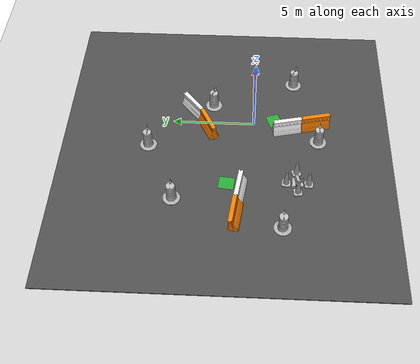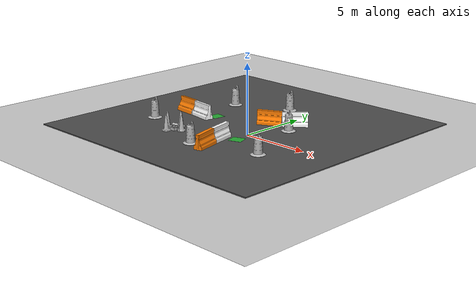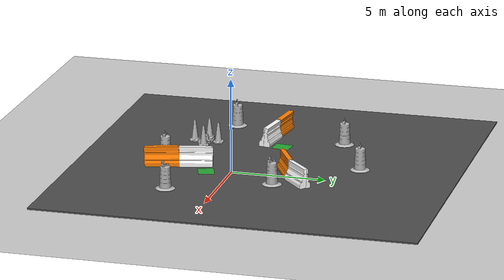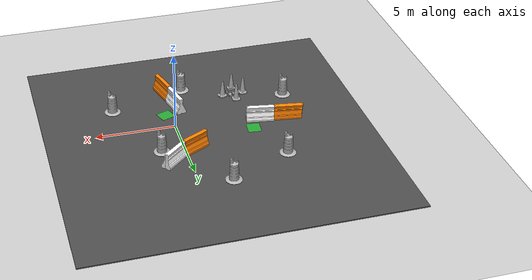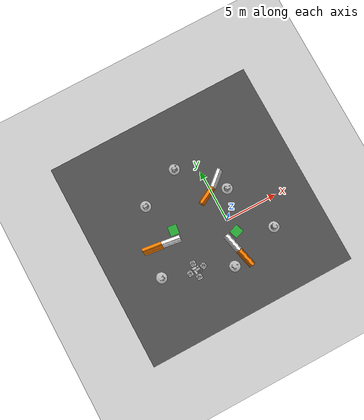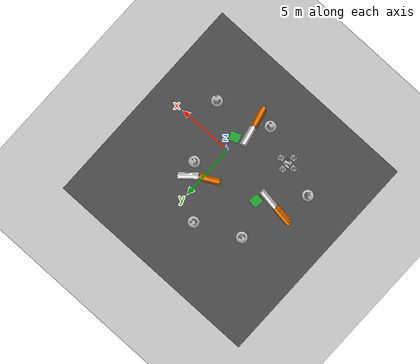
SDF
<sdf version="1.6">
 <world name="default">
  <scene><ambient>0.4 0.4 0.4 1</ambient><background>0.7 0.7 0.7 1</background><shadows>1</shadows></scene>
  <model name="ground_plane">
   <static>1</static>
   <link name="link">
    <collision name="collision">
     <geometry><plane><normal>0 0 1</normal><size>100 100</size></plane></geometry>
     <surface><friction><ode><mu>100</mu><mu2>50</mu2></ode></friction></surface>
    </collision>
    <visual name="visual">
     <cast_shadows>0</cast_shadows>
     <geometry><plane><normal>0 0 1</normal><size>100 100</size></plane></geometry>
     <material>
      <script><uri>file://media/materials/scripts/gazebo.material</uri><name>Gazebo/Grey</name></script>
     </material>
    </visual>
   </link>
  </model>
  <physics name="default_physics" default="0" type="ode">
   <real_time_update_rate>1000</real_time_update_rate>
   <max_step_size>0.001</max_step_size>
   <real_time_factor>1</real_time_factor>
   <ode>
    <solver>
     <type>quick</type>
     <iters>150</iters>
     <precon_iters>0</precon_iters>
     <sor>1.4</sor>
     <use_dynamic_moi_rescaling>1</use_dynamic_moi_rescaling>
    </solver>
    <constraints>
     <cfm>1e-05</cfm>
     <erp>0.2</erp>
     <contact_max_correcting_vel>2000</contact_max_correcting_vel>
     <contact_surface_layer>0.01</contact_surface_layer>
    </constraints>
   </ode>
  </physics>
  <gravity>0 0 -9.8</gravity>
  <magnetic_field>6e-06 2.3e-05 -4.2e-05</magnetic_field>
  <atmosphere type="adiabatic"/>
  <audio><device>default</device></audio>
  <spherical_coordinates>
   <surface_model>EARTH_WGS84</surface_model>
   <latitude_deg>0</latitude_deg>
   <longitude_deg>0</longitude_deg>
   <elevation>0</elevation>
   <heading_deg>0</heading_deg>
  </spherical_coordinates>
  <model name="asphalt_plane">
   <static>1</static>
   <link name="link">
    <collision name="collision"><geometry><box><size>20 20 0.1</size></box></geometry></collision>
    <visual name="visual">
     <cast_shadows>0</cast_shadows>
     <geometry><box><size>20 20 0.1</size></box></geometry>
     <material>
      <script>
       <uri>model://asphalt_plane/materials/scripts</uri>
       <uri>model://asphalt_plane/materials/textures</uri>
       <name>vrc/asphalt</name>
      </script>
     </material>
    </visual>
   </link>
   <pose>-1.8669 1.65725 0 0 -0 0.001027</pose>
  </model>
  <model name="Construction Cone">
   <link name="link">
    <collision name="collision">
     <geometry>
      <mesh><scale>10 10 10</scale><uri>model://construction_cone/meshes/construction_cone.dae</uri></mesh>
     </geometry>
    </collision>
    <visual name="visual">
     <geometry>
      <mesh><scale>10 10 10</scale><uri>model://construction_cone/meshes/construction_cone.dae</uri></mesh>
     </geometry>
    </visual>
    <inertial>
     <inertia><ixx>1</ixx><ixy>0</ixy><ixz>0</ixz><iyy>1</iyy><iyz>0</iyz><izz>1</izz></inertia>
     <mass>1</mass>
    </inertial>
   </link>
   <pose>-5.16435 -2.65176 0.05 0 1e-06 0.121631</pose>
  </model>
  <model name="Construction Cone_0">
   <link name="link">
    <collision name="collision">
     <geometry>
      <mesh><scale>10 10 10</scale><uri>model://construction_cone/meshes/construction_cone.dae</uri></mesh>
     </geometry>
    </collision>
    <visual name="visual">
     <geometry>
      <mesh><scale>10 10 10</scale><uri>model://construction_cone/meshes/construction_cone.dae</uri></mesh>
     </geometry>
    </visual>
    <inertial>
     <inertia><ixx>1</ixx><ixy>0</ixy><ixz>0</ixz><iyy>1</iyy><iyz>0</iyz><izz>1</izz></inertia>
     <mass>1</mass>
    </inertial>
   </link>
   <pose>-4.57552 -3.29033 0.05 -0 1e-06 0.01997</pose>
  </model>
  <model name="Construction Cone_1">
   <link name="link">
    <collision name="collision">
     <geometry>
      <mesh><scale>10 10 10</scale><uri>model://construction_cone/meshes/construction_cone.dae</uri></mesh>
     </geometry>
    </collision>
    <visual name="visual">
     <geometry>
      <mesh><scale>10 10 10</scale><uri>model://construction_cone/meshes/construction_cone.dae</uri></mesh>
     </geometry>
    </visual>
    <inertial>
     <inertia><ixx>1</ixx><ixy>0</ixy><ixz>0</ixz><iyy>1</iyy><iyz>0</iyz><izz>1</izz></inertia>
     <mass>1</mass>
    </inertial>
   </link>
   <pose>-3.78942 -2.58653 0.05 0 1e-06 0.408873</pose>
  </model>
  <model name="Construction Cone_2">
   <link name="link">
    <collision name="collision">
     <geometry>
      <mesh><scale>10 10 10</scale><uri>model://construction_cone/meshes/construction_cone.dae</uri></mesh>
     </geometry>
    </collision>
    <visual name="visual">
     <geometry>
      <mesh><scale>10 10 10</scale><uri>model://construction_cone/meshes/construction_cone.dae</uri></mesh>
     </geometry>
    </visual>
    <inertial>
     <inertia><ixx>1</ixx><ixy>0</ixy><ixz>0</ixz><iyy>1</iyy><iyz>0</iyz><izz>1</izz></inertia>
     <mass>1</mass>
    </inertial>
   </link>
   <pose>-4.53453 -1.98048 0.05 -0 1e-06 -0.051788</pose>
  </model>
  <model name="Construction Barrel">
   <link name="link">
    <inertial>
     <pose>0 0 0.4 0 -0 0</pose>
     <mass>500</mass>
     <inertia><ixx>51.2096</ixx><iyy>51.2096</iyy><izz>25</izz><ixy>0</ixy><ixz>0</ixz><iyz>0</iyz></inertia>
    </inertial>
    <collision name="collision">
     <geometry><mesh><uri>model://construction_barrel/meshes/construction_barrel.dae</uri></mesh></geometry>
    </collision>
    <visual name="visual">
     <geometry><mesh><uri>model://construction_barrel/meshes/construction_barrel.dae</uri></mesh></geometry>
    </visual>
   </link>
   <pose>-5.84227 4.60122 0.049999 -1e-06 -4e-06 -0.000234</pose>
  </model>
  <model name="drc_practice_organge_jersey_barrier">
   <static>1</static>
   <link name="link">
    <visual name="visual">
     <geometry>
      <mesh><uri>model://drc_practice_orange_jersey_barrier/meshes/jersey_barrier.dae</uri></mesh>
     </geometry>
    </visual>
    <collision name="collision">
     <geometry>
      <mesh><uri>model://drc_practice_orange_jersey_barrier/meshes/jersey_barrier.dae</uri></mesh>
     </geometry>
    </collision>
   </link>
   <pose>-7.02886 0.860872 0 0.018325 -0.182031 -1.69578</pose>
  </model>
  <model name="drc_practice_white_jersey_barrier">
   <static>1</static>
   <link name="link">
    <visual name="visual">
     <geometry>
      <mesh><uri>model://drc_practice_white_jersey_barrier/meshes/jersey_barrier.dae</uri></mesh>
     </geometry>
    </visual>
    <collision name="collision">
     <geometry>
      <mesh><uri>model://drc_practice_white_jersey_barrier/meshes/jersey_barrier.dae</uri></mesh>
     </geometry>
    </collision>
   </link>
   <pose>-5.27675 0.692724 0 0.015873 -0.089228 -1.71295</pose>
  </model>
  <model name="Construction Barrel_clone">
   <link name="link">
    <inertial>
     <pose>0 0 0.4 0 -0 0</pose>
     <mass>500</mass>
     <inertia><ixx>51.2096</ixx><iyy>51.2096</iyy><izz>25</izz><ixy>0</ixy><ixz>0</ixz><iyz>0</iyz></inertia>
    </inertial>
    <collision name="collision">
     <geometry><mesh><uri>model://construction_barrel/meshes/construction_barrel.dae</uri></mesh></geometry>
    </collision>
    <visual name="visual">
     <geometry><mesh><uri>model://construction_barrel/meshes/construction_barrel.dae</uri></mesh></geometry>
    </visual>
   </link>
   <pose>-7.59534 -1.76176 0.05 2e-06 0 -8e-06</pose>
  </model>
  <model name="Construction Barrel_clone_clone">
   <link name="link">
    <inertial>
     <pose>0 0 0.4 0 -0 0</pose>
     <mass>500</mass>
     <inertia><ixx>51.2096</ixx><iyy>51.2096</iyy><izz>25</izz><ixy>0</ixy><ixz>0</ixz><iyz>0</iyz></inertia>
    </inertial>
    <collision name="collision">
     <geometry><mesh><uri>model://construction_barrel/meshes/construction_barrel.dae</uri></mesh></geometry>
    </collision>
    <visual name="visual">
     <geometry><mesh><uri>model://construction_barrel/meshes/construction_barrel.dae</uri></mesh></geometry>
    </visual>
   </link>
   <pose>1.42647 2.55656 0.049999 -1e-06 -2e-06 -0.448103</pose>
  </model>
  <model name="unit_box">
   <pose>0.292327 -1.27788 0.051182 0 -0 0.35052</pose>
   <link name="link">
    <inertial>
     <mass>1</mass>
     <inertia>
      <ixx>0.166667</ixx>
      <ixy>0</ixy>
      <ixz>0</ixz>
      <iyy>0.166667</iyy>
      <iyz>0</iyz>
      <izz>0.166667</izz>
     </inertia>
    </inertial>
    <visual name="visual">
     <geometry><box><size>0.925399 0.835488 0.005028</size></box></geometry>
     <material>
      <script><name>Gazebo/Green</name><uri>file://media/materials/scripts/gazebo.material</uri></script>
     </material>
    </visual>
   </link>
   <static>1</static>
  </model>
  <model name="unit_box_clone">
   <pose>-4.65698 1.50654 0.048636 0 -0 1.46411</pose>
   <link name="link">
    <inertial>
     <mass>1</mass>
     <inertia>
      <ixx>0.166667</ixx>
      <ixy>0</ixy>
      <ixz>0</ixz>
      <iyy>0.166667</iyy>
      <iyz>0</iyz>
      <izz>0.166667</izz>
     </inertia>
    </inertial>
    <visual name="visual">
     <geometry><box><size>0.925399 0.835488 0.005</size></box></geometry>
     <material>
      <script><name>Gazebo/Green</name><uri>file://media/materials/scripts/gazebo.material</uri></script>
     </material>
    </visual>
   </link>
   <static>1</static>
  </model>
  <light name="user_directional_light_0" type="directional">
   <pose>-1.00914 -0.301724 1 0 -0 0</pose>
   <diffuse>0.5 0.5 0.5 1</diffuse>
   <specular>0.1 0.1 0.1 1</specular>
   <direction>0.1 0.1 -0.9</direction>
   <attenuation>
    <range>20</range>
    <constant>0.5</constant>
    <linear>0.01</linear>
    <quadratic>0.001</quadratic>
   </attenuation>
  </light>
  <model name="drc_practice_white_jersey_barrier_clone">
   <static>1</static>
   <link name="link">
    <visual name="visual">
     <geometry>
      <mesh><uri>model://drc_practice_white_jersey_barrier/meshes/jersey_barrier.dae</uri></mesh>
     </geometry>
    </visual>
    <collision name="collision">
     <geometry>
      <mesh><uri>model://drc_practice_white_jersey_barrier/meshes/jersey_barrier.dae</uri></mesh>
     </geometry>
    </collision>
   </link>
   <pose>0.962383 3.76872 0 0.015269 -0.070039 -0.847827</pose>
  </model>
  <model name="drc_practice_organge_jersey_barrier_clone">
   <static>1</static>
   <link name="link">
    <visual name="visual">
     <geometry>
      <mesh><uri>model://drc_practice_orange_jersey_barrier/meshes/jersey_barrier.dae</uri></mesh>
     </geometry>
    </visual>
    <collision name="collision">
     <geometry>
      <mesh><uri>model://drc_practice_orange_jersey_barrier/meshes/jersey_barrier.dae</uri></mesh>
     </geometry>
    </collision>
   </link>
   <pose>-0.55174 2.79674 -0.018207 0.001919 -0.010685 -1.0826</pose>
  </model>
  <model name="cinder_block">
   <link name="link">
    <inertial>
     <pose>0 0 0.1016 0 -0 0</pose>
     <mass>5</mass>
     <inertia>
      <ixx>0.028705</ixx>
      <ixy>0</ixy>
      <iyy>0.073708</iyy>
      <ixz>0</ixz>
      <iyz>0</iyz>
      <izz>0.06908</izz>
     </inertia>
    </inertial>
    <visual name="visual">
     <geometry><mesh><uri>model://cinder_block/meshes/cinder_block.dae</uri></mesh></geometry>
    </visual>
    <collision name="left">
     <pose>0 -0.08465 0.1016 0 -0 0</pose>
     <geometry><box><size>0.43495 0.0339 0.2032</size></box></geometry>
     <surface>
      <contact><ode><max_vel>0.1</max_vel><min_depth>0.001</min_depth></ode></contact>
      <friction><ode><mu>1</mu><mu2>1</mu2></ode></friction>
     </surface>
    </collision>
    <collision name="right">
     <pose>0 0.08465 0.1016 0 -0 0</pose>
     <geometry><box><size>0.43495 0.0339 0.2032</size></box></geometry>
     <surface>
      <contact><ode><max_vel>0.1</max_vel><min_depth>0.001</min_depth></ode></contact>
      <friction><ode><mu>1</mu><mu2>1</mu2></ode></friction>
     </surface>
    </collision>
    <collision name="front">
     <pose>0.18625 0 0.1016 0 -0 0</pose>
     <geometry><box><size>0.0339 0.1354 0.203</size></box></geometry>
     <surface>
      <contact><ode><max_vel>0.1</max_vel><min_depth>0.001</min_depth></ode></contact>
      <friction><ode><mu>1</mu><mu2>1</mu2></ode></friction>
     </surface>
    </collision>
    <collision name="middle">
     <pose>0 0 0.1016 0 -0 0</pose>
     <geometry><box><size>0.0339 0.1354 0.203</size></box></geometry>
     <surface>
      <contact><ode><max_vel>0.1</max_vel><min_depth>0.001</min_depth></ode></contact>
      <friction><ode><mu>1</mu><mu2>1</mu2></ode></friction>
     </surface>
    </collision>
    <collision name="back">
     <pose>-0.18625 0 0.1016 0 -0 0</pose>
     <geometry><box><size>0.0339 0.1354 0.203</size></box></geometry>
     <surface>
      <contact><ode><max_vel>0.1</max_vel><min_depth>0.001</min_depth></ode></contact>
      <friction><ode><mu>1</mu><mu2>1</mu2></ode></friction>
     </surface>
    </collision>
   </link>
   <pose>-4.31907 -2.88792 0.049996 -3.5e-05 -0 0.042391</pose>
  </model>
  <model name="cinder_block_2">
   <link name="link">
    <inertial>
     <pose>0 0 0.071438 0 -0 0</pose>
     <mass>5</mass>
     <inertia>
      <ixx>0.06908</ixx>
      <ixy>0</ixy>
      <iyy>0.028705</iyy>
      <ixz>0</ixz>
      <iyz>0</iyz>
      <izz>0.073708</izz>
     </inertia>
    </inertial>
    <visual name="visual">
     <geometry><mesh><uri>model://cinder_block_2/meshes/cinder_block.dae</uri></mesh></geometry>
    </visual>
    <collision name="top">
     <pose>0 0 0.130175 0 -0 0</pose>
     <geometry><box><size>0.19368 0.396875 0.0254</size></box></geometry>
     <surface>
      <contact><ode><max_vel>0.1</max_vel><min_depth>0.001</min_depth></ode></contact>
      <friction><ode><mu>1</mu><mu2>1</mu2></ode></friction>
     </surface>
    </collision>
    <collision name="bottom">
     <pose>0 0 0.0127 0 -0 0</pose>
     <geometry><box><size>0.19368 0.396875 0.0254</size></box></geometry>
     <surface>
      <contact><ode><max_vel>0.1</max_vel><min_depth>0.001</min_depth></ode></contact>
      <friction><ode><mu>1</mu><mu2>1</mu2></ode></friction>
     </surface>
    </collision>
    <collision name="left">
     <pose>0 -0.185738 0.071438 0 -0 0</pose>
     <geometry><box><size>0.19368 0.0254 0.092075</size></box></geometry>
     <surface>
      <contact><ode><max_vel>0.1</max_vel><min_depth>0.001</min_depth></ode></contact>
      <friction><ode><mu>1</mu><mu2>1</mu2></ode></friction>
     </surface>
    </collision>
    <collision name="right">
     <pose>0 0.185738 0.071438 0 -0 0</pose>
     <geometry><box><size>0.19368 0.0254 0.092075</size></box></geometry>
     <surface>
      <contact><ode><max_vel>0.1</max_vel><min_depth>0.001</min_depth></ode></contact>
      <friction><ode><mu>1</mu><mu2>1</mu2></ode></friction>
     </surface>
    </collision>
    <collision name="middle">
     <pose>0 0 0.071438 0 -0 0</pose>
     <geometry><box><size>0.19368 0.0254 0.092075</size></box></geometry>
     <surface>
      <contact><ode><max_vel>0.1</max_vel><min_depth>0.001</min_depth></ode></contact>
      <friction><ode><mu>1</mu><mu2>1</mu2></ode></friction>
     </surface>
    </collision>
   </link>
   <pose>-4.27506 -2.5238 0.049955 -0.000144 -7.5e-05 0.028468</pose>
  </model>
  <model name="cinder_block_0">
   <link name="link">
    <inertial>
     <pose>0 0 0.1016 0 -0 0</pose>
     <mass>5</mass>
     <inertia>
      <ixx>0.028705</ixx>
      <ixy>0</ixy>
      <iyy>0.073708</iyy>
      <ixz>0</ixz>
      <iyz>0</iyz>
      <izz>0.06908</izz>
     </inertia>
    </inertial>
    <visual name="visual">
     <geometry><mesh><uri>model://cinder_block/meshes/cinder_block.dae</uri></mesh></geometry>
    </visual>
    <collision name="left">
     <pose>0 -0.08465 0.1016 0 -0 0</pose>
     <geometry><box><size>0.43495 0.0339 0.2032</size></box></geometry>
     <surface>
      <contact><ode><max_vel>0.1</max_vel><min_depth>0.001</min_depth></ode></contact>
      <friction><ode><mu>1</mu><mu2>1</mu2></ode></friction>
     </surface>
    </collision>
    <collision name="right">
     <pose>0 0.08465 0.1016 0 -0 0</pose>
     <geometry><box><size>0.43495 0.0339 0.2032</size></box></geometry>
     <surface>
      <contact><ode><max_vel>0.1</max_vel><min_depth>0.001</min_depth></ode></contact>
      <friction><ode><mu>1</mu><mu2>1</mu2></ode></friction>
     </surface>
    </collision>
    <collision name="front">
     <pose>0.18625 0 0.1016 0 -0 0</pose>
     <geometry><box><size>0.0339 0.1354 0.203</size></box></geometry>
     <surface>
      <contact><ode><max_vel>0.1</max_vel><min_depth>0.001</min_depth></ode></contact>
      <friction><ode><mu>1</mu><mu2>1</mu2></ode></friction>
     </surface>
    </collision>
    <collision name="middle">
     <pose>0 0 0.1016 0 -0 0</pose>
     <geometry><box><size>0.0339 0.1354 0.203</size></box></geometry>
     <surface>
      <contact><ode><max_vel>0.1</max_vel><min_depth>0.001</min_depth></ode></contact>
      <friction><ode><mu>1</mu><mu2>1</mu2></ode></friction>
     </surface>
    </collision>
    <collision name="back">
     <pose>-0.18625 0 0.1016 0 -0 0</pose>
     <geometry><box><size>0.0339 0.1354 0.203</size></box></geometry>
     <surface>
      <contact><ode><max_vel>0.1</max_vel><min_depth>0.001</min_depth></ode></contact>
      <friction><ode><mu>1</mu><mu2>1</mu2></ode></friction>
     </surface>
    </collision>
   </link>
   <pose>-4.62515 -2.50716 0.151518 -1.57087 -0.000135 0.007665</pose>
  </model>
  <model name="cinder_block_2_0">
   <link name="link">
    <inertial>
     <pose>0 0 0.071438 0 -0 0</pose>
     <mass>5</mass>
     <inertia>
      <ixx>0.06908</ixx>
      <ixy>0</ixy>
      <iyy>0.028705</iyy>
      <ixz>0</ixz>
      <iyz>0</iyz>
      <izz>0.073708</izz>
     </inertia>
    </inertial>
    <visual name="visual">
     <geometry><mesh><uri>model://cinder_block_2/meshes/cinder_block.dae</uri></mesh></geometry>
    </visual>
    <collision name="top">
     <pose>0 0 0.130175 0 -0 0</pose>
     <geometry><box><size>0.19368 0.396875 0.0254</size></box></geometry>
     <surface>
      <contact><ode><max_vel>0.1</max_vel><min_depth>0.001</min_depth></ode></contact>
      <friction><ode><mu>1</mu><mu2>1</mu2></ode></friction>
     </surface>
    </collision>
    <collision name="bottom">
     <pose>0 0 0.0127 0 -0 0</pose>
     <geometry><box><size>0.19368 0.396875 0.0254</size></box></geometry>
     <surface>
      <contact><ode><max_vel>0.1</max_vel><min_depth>0.001</min_depth></ode></contact>
      <friction><ode><mu>1</mu><mu2>1</mu2></ode></friction>
     </surface>
    </collision>
    <collision name="left">
     <pose>0 -0.185738 0.071438 0 -0 0</pose>
     <geometry><box><size>0.19368 0.0254 0.092075</size></box></geometry>
     <surface>
      <contact><ode><max_vel>0.1</max_vel><min_depth>0.001</min_depth></ode></contact>
      <friction><ode><mu>1</mu><mu2>1</mu2></ode></friction>
     </surface>
    </collision>
    <collision name="right">
     <pose>0 0.185738 0.071438 0 -0 0</pose>
     <geometry><box><size>0.19368 0.0254 0.092075</size></box></geometry>
     <surface>
      <contact><ode><max_vel>0.1</max_vel><min_depth>0.001</min_depth></ode></contact>
      <friction><ode><mu>1</mu><mu2>1</mu2></ode></friction>
     </surface>
    </collision>
    <collision name="middle">
     <pose>0 0 0.071438 0 -0 0</pose>
     <geometry><box><size>0.19368 0.0254 0.092075</size></box></geometry>
     <surface>
      <contact><ode><max_vel>0.1</max_vel><min_depth>0.001</min_depth></ode></contact>
      <friction><ode><mu>1</mu><mu2>1</mu2></ode></friction>
     </surface>
    </collision>
   </link>
   <pose>-4.65766 -2.77686 0.04995 -0.000122 -0.00025 0.158348</pose>
  </model>
  <model name="cinder_block_1">
   <link name="link">
    <inertial>
     <pose>0 0 0.1016 0 -0 0</pose>
     <mass>5</mass>
     <inertia>
      <ixx>0.028705</ixx>
      <ixy>0</ixy>
      <iyy>0.073708</iyy>
      <ixz>0</ixz>
      <iyz>0</iyz>
      <izz>0.06908</izz>
     </inertia>
    </inertial>
    <visual name="visual">
     <geometry><mesh><uri>model://cinder_block/meshes/cinder_block.dae</uri></mesh></geometry>
    </visual>
    <collision name="left">
     <pose>0 -0.08465 0.1016 0 -0 0</pose>
     <geometry><box><size>0.43495 0.0339 0.2032</size></box></geometry>
     <surface>
      <contact><ode><max_vel>0.1</max_vel><min_depth>0.001</min_depth></ode></contact>
      <friction><ode><mu>1</mu><mu2>1</mu2></ode></friction>
     </surface>
    </collision>
    <collision name="right">
     <pose>0 0.08465 0.1016 0 -0 0</pose>
     <geometry><box><size>0.43495 0.0339 0.2032</size></box></geometry>
     <surface>
      <contact><ode><max_vel>0.1</max_vel><min_depth>0.001</min_depth></ode></contact>
      <friction><ode><mu>1</mu><mu2>1</mu2></ode></friction>
     </surface>
    </collision>
    <collision name="front">
     <pose>0.18625 0 0.1016 0 -0 0</pose>
     <geometry><box><size>0.0339 0.1354 0.203</size></box></geometry>
     <surface>
      <contact><ode><max_vel>0.1</max_vel><min_depth>0.001</min_depth></ode></contact>
      <friction><ode><mu>1</mu><mu2>1</mu2></ode></friction>
     </surface>
    </collision>
    <collision name="middle">
     <pose>0 0 0.1016 0 -0 0</pose>
     <geometry><box><size>0.0339 0.1354 0.203</size></box></geometry>
     <surface>
      <contact><ode><max_vel>0.1</max_vel><min_depth>0.001</min_depth></ode></contact>
      <friction><ode><mu>1</mu><mu2>1</mu2></ode></friction>
     </surface>
    </collision>
    <collision name="back">
     <pose>-0.18625 0 0.1016 0 -0 0</pose>
     <geometry><box><size>0.0339 0.1354 0.203</size></box></geometry>
     <surface>
      <contact><ode><max_vel>0.1</max_vel><min_depth>0.001</min_depth></ode></contact>
      <friction><ode><mu>1</mu><mu2>1</mu2></ode></friction>
     </surface>
    </collision>
   </link>
   <pose>-4.37111 -2.69482 0.287628 -1.20264 1.3e-05 0.232481</pose>
  </model>
  <model name="drc_practice_organge_jersey_barrier_0">
   <static>1</static>
   <link name="link">
    <visual name="visual">
     <geometry>
      <mesh><uri>model://drc_practice_orange_jersey_barrier/meshes/jersey_barrier.dae</uri></mesh>
     </geometry>
    </visual>
    <collision name="collision">
     <geometry>
      <mesh><uri>model://drc_practice_orange_jersey_barrier/meshes/jersey_barrier.dae</uri></mesh>
     </geometry>
    </collision>
   </link>
   <pose>-0.12897 -3.75902 0.014549 0.016656 0 0.241069</pose>
  </model>
  <model name="drc_practice_white_jersey_barrier_clone_clone">
   <static>1</static>
   <link name="link">
    <visual name="visual">
     <geometry>
      <mesh><uri>model://drc_practice_white_jersey_barrier/meshes/jersey_barrier.dae</uri></mesh>
     </geometry>
    </visual>
    <collision name="collision">
     <geometry>
      <mesh><uri>model://drc_practice_white_jersey_barrier/meshes/jersey_barrier.dae</uri></mesh>
     </geometry>
    </collision>
   </link>
   <pose>-0.526394 -2.03771 0.028548 -0.001158 0.001312 0.22312</pose>
  </model>
  <model name="Construction Barrel_clone_clone_clone">
   <link name="link">
    <inertial>
     <pose>0 0 0.4 0 -0 0</pose>
     <mass>500</mass>
     <inertia><ixx>51.2096</ixx><iyy>51.2096</iyy><izz>25</izz><ixy>0</ixy><ixz>0</ixz><iyz>0</iyz></inertia>
    </inertial>
    <collision name="collision">
     <geometry><mesh><uri>model://construction_barrel/meshes/construction_barrel.dae</uri></mesh></geometry>
    </collision>
    <visual name="visual">
     <geometry><mesh><uri>model://construction_barrel/meshes/construction_barrel.dae</uri></mesh></geometry>
    </visual>
   </link>
   <pose>3.45634 -2.52037 0.05 1e-06 0 -0.448105</pose>
  </model>
  <model name="Construction Barrel_clone_clone_0">
   <link name="link">
    <inertial>
     <pose>0 0 0.4 0 -0 0</pose>
     <mass>500</mass>
     <inertia><ixx>51.2096</ixx><iyy>51.2096</iyy><izz>25</izz><ixy>0</ixy><ixz>0</ixz><iyz>0</iyz></inertia>
    </inertial>
    <collision name="collision">
     <geometry><mesh><uri>model://construction_barrel/meshes/construction_barrel.dae</uri></mesh></geometry>
    </collision>
    <visual name="visual">
     <geometry><mesh><uri>model://construction_barrel/meshes/construction_barrel.dae</uri></mesh></geometry>
    </visual>
   </link>
   <pose>-1.34224 -3.95792 0.049999 2e-06 -0 0.001674</pose>
  </model>
  <model name="Construction Barrel_clone_0">
   <link name="link">
    <inertial>
     <pose>0 0 0.4 0 -0 0</pose>
     <mass>500</mass>
     <inertia><ixx>51.2096</ixx><iyy>51.2096</iyy><izz>25</izz><ixy>0</ixy><ixz>0</ixz><iyz>0</iyz></inertia>
    </inertial>
    <collision name="collision">
     <geometry><mesh><uri>model://construction_barrel/meshes/construction_barrel.dae</uri></mesh></geometry>
    </collision>
    <visual name="visual">
     <geometry><mesh><uri>model://construction_barrel/meshes/construction_barrel.dae</uri></mesh></geometry>
    </visual>
   </link>
   <pose>-1.96037 6.37387 0.049999 5e-06 2e-06 -0.000234</pose>
  </model>
 </world>
</sdf>
